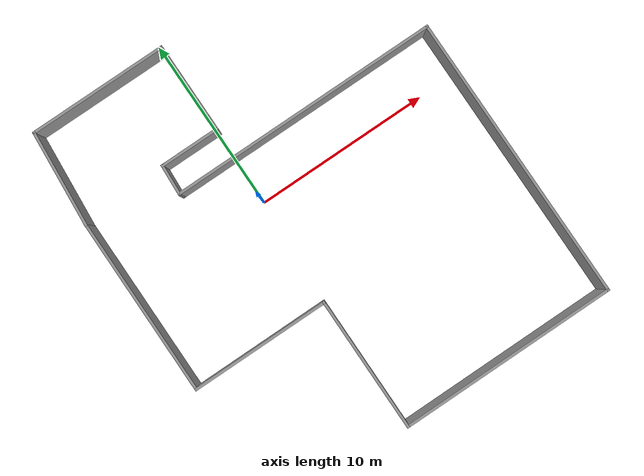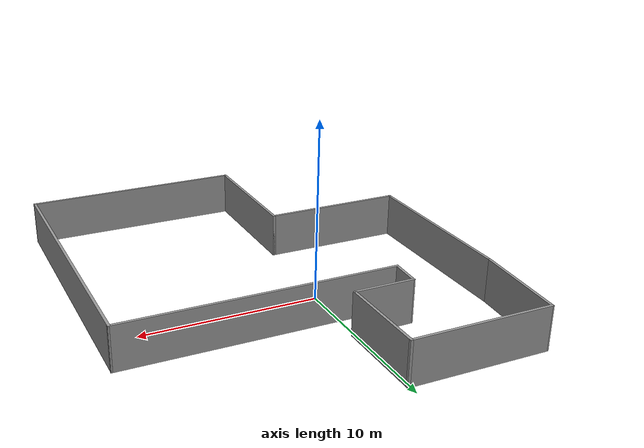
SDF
<?xml version='1.0'?>
<sdf version='1.6'>
  <model name='closed_room'>
    <pose frame=''>1.9272 -2.1322 0 0 -0 0</pose>
    <link name='Wall_10'>
      <collision name='Wall_10_Collision'>
        <geometry>
          <box>
            <size>15.5 0.15 2.5</size>
          </box>
        </geometry>
        <pose frame=''>0 0 1.25 0 -0 0</pose>
      </collision>
      <visual name='Wall_10_Visual'>
        <pose frame=''>0 0 1.25 0 -0 0</pose>
        <geometry>
          <box>
            <size>15.5 0.15 2.5</size>
          </box>
        </geometry>
        <material>
          <script>
            <uri>file://media/materials/scripts/gazebo.material</uri>
            <name>Gazebo/Grey</name>
          </script>
          <ambient>1 1 1 1</ambient>
        </material>
        <meta>
          <layer>0</layer>
        </meta>
      </visual>
      <pose frame=''>2.4178 4.7822 0 0 -0 3.14159</pose>
    </link>
    <link name='Wall_13'>
      <collision name='Wall_13_Collision'>
        <geometry>
          <box>
            <size>1.83241 0.15 2.5</size>
          </box>
        </geometry>
        <pose frame=''>0 0 1.25 0 -0 0</pose>
      </collision>
      <visual name='Wall_13_Visual'>
        <pose frame=''>0 0 1.25 0 -0 0</pose>
        <geometry>
          <box>
            <size>1.83241 0.15 2.5</size>
          </box>
        </geometry>
        <material>
          <script>
            <uri>file://media/materials/scripts/gazebo.material</uri>
            <name>Gazebo/Grey</name>
          </script>
          <ambient>1 1 1 1</ambient>
        </material>
        <meta>
          <layer>0</layer>
        </meta>
      </visual>
      <pose frame=''>-5.2122 5.6222 0 0 -0 -1.62432</pose>
    </link>
    <link name='Wall_15'>
      <collision name='Wall_15_Collision'>
        <geometry>
          <box>
            <size>3.5 0.15 2.5</size>
          </box>
        </geometry>
        <pose frame=''>0 0 1.25 0 -0 0</pose>
      </collision>
      <visual name='Wall_15_Visual'>
        <pose frame=''>0 0 1.25 0 -0 0</pose>
        <geometry>
          <box>
            <size>3.5 0.15 2.5</size>
          </box>
        </geometry>
        <material>
          <script>
            <uri>file://media/materials/scripts/gazebo.material</uri>
            <name>Gazebo/Grey</name>
          </script>
          <ambient>1 1 1 1</ambient>
        </material>
        <meta>
          <layer>0</layer>
        </meta>
      </visual>
      <pose frame=''>-3.4922 6.4622 0 0 -0 0</pose>
    </link>
    <link name='Wall_16'>
      <collision name='Wall_16_Collision'>
        <geometry>
          <box>
            <size>5.25 0.15 2.5</size>
          </box>
        </geometry>
        <pose frame=''>0 0 1.25 0 -0 0</pose>
      </collision>
      <visual name='Wall_16_Visual'>
        <pose frame=''>0 0 1.25 0 -0 0</pose>
        <geometry>
          <box>
            <size>5.25 0.15 2.5</size>
          </box>
        </geometry>
        <material>
          <script>
            <uri>file://media/materials/scripts/gazebo.material</uri>
            <name>Gazebo/Grey</name>
          </script>
          <ambient>1 1 1 1</ambient>
        </material>
        <meta>
          <layer>0</layer>
        </meta>
      </visual>
      <pose frame=''>-1.8172 9.0122 0 0 -0 1.5708</pose>
    </link>
    <link name='Wall_17'>
      <collision name='Wall_17_Collision'>
        <geometry>
          <box>
            <size>8 0.15 2.5</size>
          </box>
        </geometry>
        <pose frame=''>0 0 1.25 0 -0 0</pose>
      </collision>
      <visual name='Wall_17_Visual'>
        <pose frame=''>0 0 1.25 0 -0 0</pose>
        <geometry>
          <box>
            <size>8 0.15 2.5</size>
          </box>
        </geometry>
        <material>
          <script>
            <uri>file://media/materials/scripts/gazebo.material</uri>
            <name>Gazebo/Grey</name>
          </script>
          <ambient>1 1 1 1</ambient>
        </material>
        <meta>
          <layer>0</layer>
        </meta>
      </visual>
      <pose frame=''>-5.7422 11.5622 0 0 -0 3.14159</pose>
    </link>
    <link name='Wall_18'>
      <collision name='Wall_18_Collision'>
        <geometry>
          <box>
            <size>5.597 0.15 2.5</size>
          </box>
        </geometry>
        <pose frame=''>0 0 1.25 0 -0 0</pose>
      </collision>
      <visual name='Wall_18_Visual'>
        <pose frame=''>0 0 1.25 0 -0 0</pose>
        <geometry>
          <box>
            <size>5.597 0.15 2.5</size>
          </box>
        </geometry>
        <material>
          <script>
            <uri>file://media/materials/scripts/gazebo.material</uri>
            <name>Gazebo/Grey</name>
          </script>
          <ambient>1 1 1 1</ambient>
        </material>
        <meta>
          <layer>0</layer>
        </meta>
      </visual>
      <pose frame=''>-9.8822 8.8472 0 0 -0 -1.64982</pose>
    </link>
    <link name='Wall_4'>
      <collision name='Wall_4_Collision'>
        <geometry>
          <box>
            <size>10.25 0.15 2.5</size>
          </box>
        </geometry>
        <pose frame=''>0 0 1.25 0 -0 0</pose>
      </collision>
      <visual name='Wall_4_Visual'>
        <pose frame=''>0 0 1.25 0 -0 0</pose>
        <geometry>
          <box>
            <size>10.25 0.15 2.5</size>
          </box>
        </geometry>
        <material>
          <script>
            <uri>file://media/materials/scripts/gazebo.material</uri>
            <name>Gazebo/Grey</name>
          </script>
          <ambient>1 1 1 1</ambient>
        </material>
        <meta>
          <layer>0</layer>
        </meta>
      </visual>
      <pose frame=''>-10.0972 1.0822 0 0 -0 -1.5708</pose>
    </link>
    <link name='Wall_5'>
      <collision name='Wall_5_Collision'>
        <geometry>
          <box>
            <size>8 0.15 2.5</size>
          </box>
        </geometry>
        <pose frame=''>0 0 1.25 0 -0 0</pose>
      </collision>
      <visual name='Wall_5_Visual'>
        <pose frame=''>0 0 1.25 0 -0 0</pose>
        <geometry>
          <box>
            <size>8 0.15 2.5</size>
          </box>
        </geometry>
        <material>
          <script>
            <uri>file://media/materials/scripts/gazebo.material</uri>
            <name>Gazebo/Grey</name>
          </script>
          <ambient>1 1 1 1</ambient>
        </material>
        <meta>
          <layer>0</layer>
        </meta>
      </visual>
      <pose frame=''>-6.1722 -3.9678 0 0 -0 0</pose>
    </link>
    <link name='Wall_6'>
      <collision name='Wall_6_Collision'>
        <geometry>
          <box>
            <size>7.75 0.15 2.5</size>
          </box>
        </geometry>
        <pose frame=''>0 0 1.25 0 -0 0</pose>
      </collision>
      <visual name='Wall_6_Visual'>
        <pose frame=''>0 0 1.25 0 -0 0</pose>
        <geometry>
          <box>
            <size>7.75 0.15 2.5</size>
          </box>
        </geometry>
        <material>
          <script>
            <uri>file://media/materials/scripts/gazebo.material</uri>
            <name>Gazebo/Grey</name>
          </script>
          <ambient>1 1 1 1</ambient>
        </material>
        <meta>
          <layer>0</layer>
        </meta>
      </visual>
      <pose frame=''>-2.2472 -7.7678 0 0 -0 -1.5708</pose>
    </link>
    <link name='Wall_7'>
      <collision name='Wall_7_Collision'>
        <geometry>
          <box>
            <size>12.5 0.15 2.5</size>
          </box>
        </geometry>
        <pose frame=''>0 0 1.25 0 -0 0</pose>
      </collision>
      <visual name='Wall_7_Visual'>
        <pose frame=''>0 0 1.25 0 -0 0</pose>
        <geometry>
          <box>
            <size>12.5 0.15 2.5</size>
          </box>
        </geometry>
        <material>
          <script>
            <uri>file://media/materials/scripts/gazebo.material</uri>
            <name>Gazebo/Grey</name>
          </script>
          <ambient>1 1 1 1</ambient>
        </material>
        <meta>
          <layer>0</layer>
        </meta>
      </visual>
      <pose frame=''>3.9278 -11.5678 0 0 -0 0</pose>
    </link>
    <link name='Wall_9'>
      <collision name='Wall_9_Collision'>
        <geometry>
          <box>
            <size>16.5 0.15 2.5</size>
          </box>
        </geometry>
        <pose frame=''>0 0 1.25 0 -0 0</pose>
      </collision>
      <visual name='Wall_9_Visual'>
        <pose frame=''>0 0 1.25 0 -0 0</pose>
        <geometry>
          <box>
            <size>16.5 0.15 2.5</size>
          </box>
        </geometry>
        <material>
          <script>
            <uri>file://media/materials/scripts/gazebo.material</uri>
            <name>Gazebo/Grey</name>
          </script>
          <ambient>1 1 1 1</ambient>
        </material>
        <meta>
          <layer>0</layer>
        </meta>
      </visual>
      <pose frame=''>10.0928 -3.3928 0 0 -0 1.57202</pose>
    </link>
    <static>1</static>
  </model>
</sdf>
